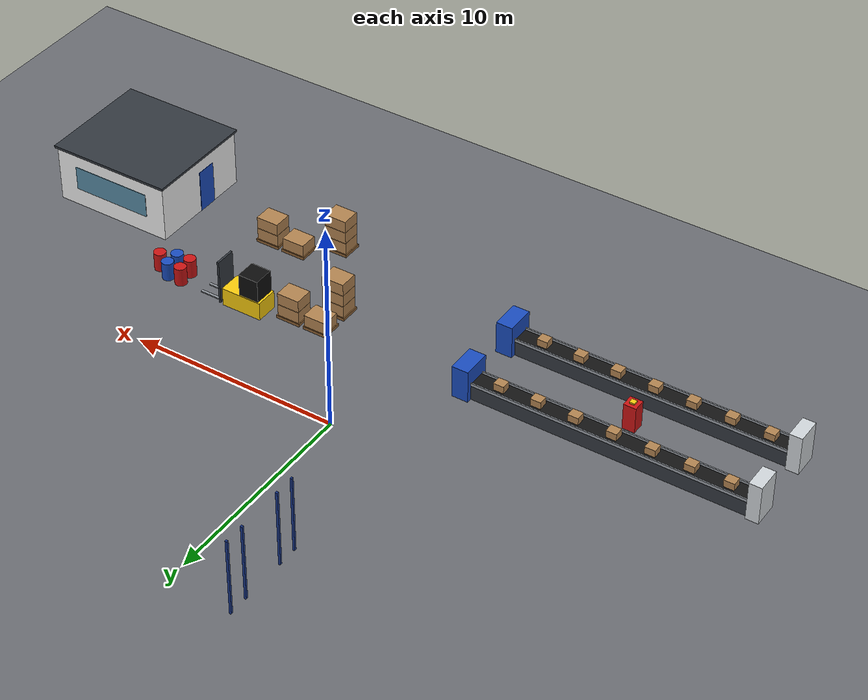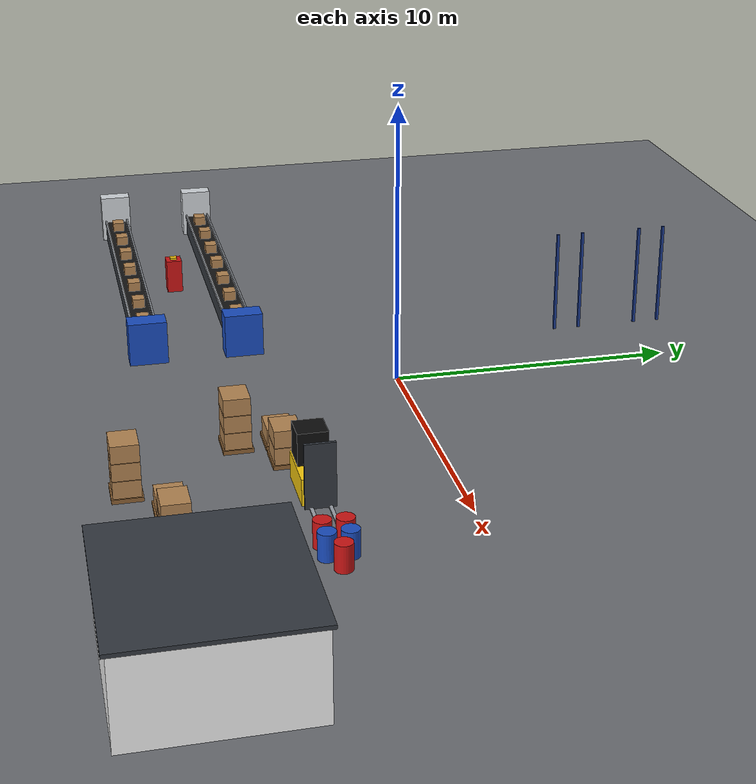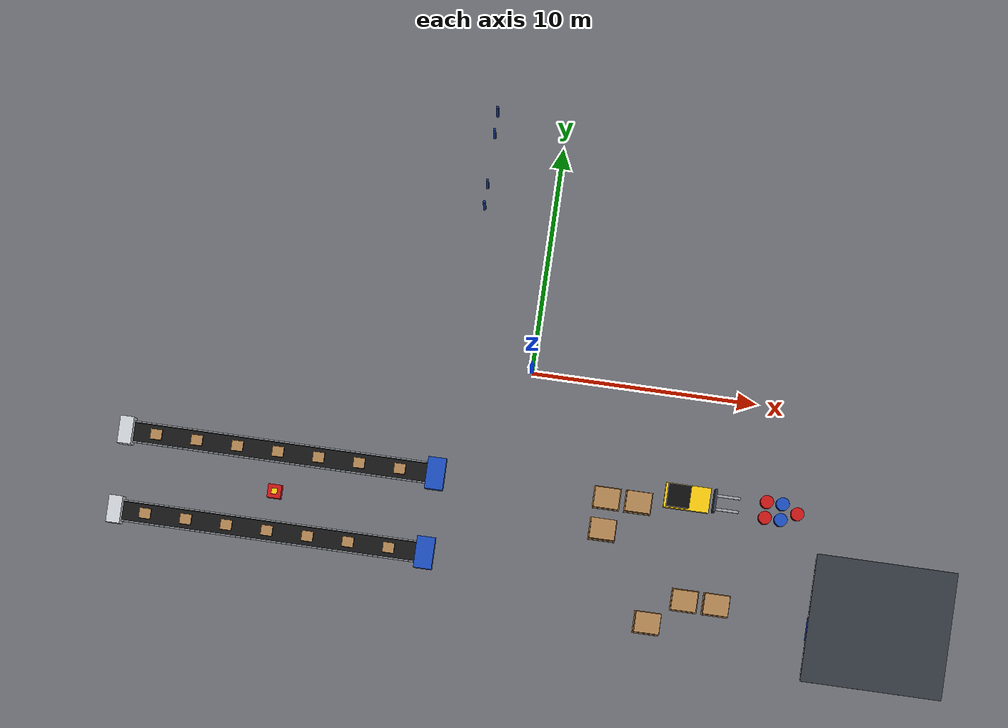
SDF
<sdf version="1.8">
 <world name="factory">
  <model name="ground">
   <static>true</static>
   <link name="l">
    <collision name="c">
     <geometry><plane><normal>0 0 1</normal><size>60 40</size></plane></geometry>
     <surface><friction><ode><mu>1.0</mu><mu2>1.0</mu2></ode></friction></surface>
    </collision>
    <visual name="v">
     <geometry><plane><normal>0 0 1</normal><size>60 40</size></plane></geometry>
     <material>
      <ambient>0.42 0.43 0.45 1</ambient>
      <diffuse>0.42 0.43 0.45 1</diffuse>
      <specular>0.3 0.3 0.3 1</specular>
      <pbr><metal><metalness>0.0</metalness><roughness>0.85</roughness></metal></pbr>
     </material>
    </visual>
   </link>
  </model>
  <model name="pallet_racks">
   <static>true</static>
   <link name="l124">
    <pose>-3.100 6.920 1.900 0 0 0.000</pose>
    <collision name="c"><geometry><box><size>0.1 0.1 3.8</size></box></geometry></collision>
    <visual name="v">
     <geometry><box><size>0.1 0.1 3.8</size></box></geometry>
     <material>
      <ambient>0.1 0.22 0.55 1</ambient>
      <diffuse>0.1 0.22 0.55 1</diffuse>
      <specular>0.3 0.3 0.3 1</specular>
      <pbr><metal><metalness>0.6</metalness><roughness>0.4</roughness></metal></pbr>
     </material>
    </visual>
   </link>
   <link name="l125">
    <pose>-3.100 7.880 1.900 0 0 0.000</pose>
    <collision name="c"><geometry><box><size>0.1 0.1 3.8</size></box></geometry></collision>
    <visual name="v">
     <geometry><box><size>0.1 0.1 3.8</size></box></geometry>
     <material>
      <ambient>0.1 0.22 0.55 1</ambient>
      <diffuse>0.1 0.22 0.55 1</diffuse>
      <specular>0.3 0.3 0.3 1</specular>
      <pbr><metal><metalness>0.6</metalness><roughness>0.4</roughness></metal></pbr>
     </material>
    </visual>
   </link>
   <link name="l187">
    <pose>-3.100 10.120 1.900 0 0 0.000</pose>
    <collision name="c"><geometry><box><size>0.1 0.1 3.8</size></box></geometry></collision>
    <visual name="v">
     <geometry><box><size>0.1 0.1 3.8</size></box></geometry>
     <material>
      <ambient>0.1 0.22 0.55 1</ambient>
      <diffuse>0.1 0.22 0.55 1</diffuse>
      <specular>0.3 0.3 0.3 1</specular>
      <pbr><metal><metalness>0.6</metalness><roughness>0.4</roughness></metal></pbr>
     </material>
    </visual>
   </link>
   <link name="l188">
    <pose>-3.100 11.080 1.900 0 0 0.000</pose>
    <collision name="c"><geometry><box><size>0.1 0.1 3.8</size></box></geometry></collision>
    <visual name="v">
     <geometry><box><size>0.1 0.1 3.8</size></box></geometry>
     <material>
      <ambient>0.1 0.22 0.55 1</ambient>
      <diffuse>0.1 0.22 0.55 1</diffuse>
      <specular>0.3 0.3 0.3 1</specular>
      <pbr><metal><metalness>0.6</metalness><roughness>0.4</roughness></metal></pbr>
     </material>
    </visual>
   </link>
  </model>
  <model name="conveyors">
   <static>true</static>
   <link name="l0">
    <pose>-10.500 -5.000 0.375 0 0 0.000</pose>
    <collision name="c"><geometry><box><size>13.0 0.9 0.75</size></box></geometry></collision>
    <visual name="v">
     <geometry><box><size>13.0 0.9 0.75</size></box></geometry>
     <material>
      <ambient>0.2 0.22 0.25 1</ambient>
      <diffuse>0.2 0.22 0.25 1</diffuse>
      <specular>0.3 0.3 0.3 1</specular>
      <pbr><metal><metalness>0.6</metalness><roughness>0.35</roughness></metal></pbr>
     </material>
    </visual>
   </link>
   <link name="l1">
    <pose>-10.500 -5.000 0.780 0 0 0.000</pose>
    <collision name="c"><geometry><box><size>13.0 0.8 0.06</size></box></geometry></collision>
    <visual name="v">
     <geometry><box><size>13.0 0.8 0.06</size></box></geometry>
     <material>
      <ambient>0.08 0.08 0.08 1</ambient>
      <diffuse>0.08 0.08 0.08 1</diffuse>
      <specular>0.3 0.3 0.3 1</specular>
      <pbr><metal><metalness>0.0</metalness><roughness>0.8</roughness></metal></pbr>
     </material>
    </visual>
   </link>
   <link name="l2">
    <pose>-10.500 -5.450 0.825 0 0 0.000</pose>
    <collision name="c"><geometry><box><size>13.0 0.06 0.15</size></box></geometry></collision>
    <visual name="v">
     <geometry><box><size>13.0 0.06 0.15</size></box></geometry>
     <material>
      <ambient>0.6 0.62 0.65 1</ambient>
      <diffuse>0.6 0.62 0.65 1</diffuse>
      <specular>0.3 0.3 0.3 1</specular>
      <pbr><metal><metalness>0.9</metalness><roughness>0.3</roughness></metal></pbr>
     </material>
    </visual>
   </link>
   <link name="l3">
    <pose>-10.500 -4.550 0.825 0 0 0.000</pose>
    <collision name="c"><geometry><box><size>13.0 0.06 0.15</size></box></geometry></collision>
    <visual name="v">
     <geometry><box><size>13.0 0.06 0.15</size></box></geometry>
     <material>
      <ambient>0.6 0.62 0.65 1</ambient>
      <diffuse>0.6 0.62 0.65 1</diffuse>
      <specular>0.3 0.3 0.3 1</specular>
      <pbr><metal><metalness>0.9</metalness><roughness>0.3</roughness></metal></pbr>
     </material>
    </visual>
   </link>
   <link name="l4">
    <pose>-16.000 -5.000 0.985 0 0 0.000</pose>
    <collision name="c"><geometry><box><size>0.5 0.45 0.35</size></box></geometry></collision>
    <visual name="v">
     <geometry><box><size>0.5 0.45 0.35</size></box></geometry>
     <material>
      <ambient>0.7 0.52 0.32 1</ambient>
      <diffuse>0.7 0.52 0.32 1</diffuse>
      <specular>0.3 0.3 0.3 1</specular>
      <pbr><metal><metalness>0.0</metalness><roughness>0.95</roughness></metal></pbr>
     </material>
    </visual>
   </link>
   <link name="l5">
    <pose>-14.200 -5.000 0.985 0 0 0.000</pose>
    <collision name="c"><geometry><box><size>0.5 0.45 0.35</size></box></geometry></collision>
    <visual name="v">
     <geometry><box><size>0.5 0.45 0.35</size></box></geometry>
     <material>
      <ambient>0.7 0.52 0.32 1</ambient>
      <diffuse>0.7 0.52 0.32 1</diffuse>
      <specular>0.3 0.3 0.3 1</specular>
      <pbr><metal><metalness>0.0</metalness><roughness>0.95</roughness></metal></pbr>
     </material>
    </visual>
   </link>
   <link name="l6">
    <pose>-12.400 -5.000 0.985 0 0 0.000</pose>
    <collision name="c"><geometry><box><size>0.5 0.45 0.35</size></box></geometry></collision>
    <visual name="v">
     <geometry><box><size>0.5 0.45 0.35</size></box></geometry>
     <material>
      <ambient>0.7 0.52 0.32 1</ambient>
      <diffuse>0.7 0.52 0.32 1</diffuse>
      <specular>0.3 0.3 0.3 1</specular>
      <pbr><metal><metalness>0.0</metalness><roughness>0.95</roughness></metal></pbr>
     </material>
    </visual>
   </link>
   <link name="l7">
    <pose>-10.600 -5.000 0.985 0 0 0.000</pose>
    <collision name="c"><geometry><box><size>0.5 0.45 0.35</size></box></geometry></collision>
    <visual name="v">
     <geometry><box><size>0.5 0.45 0.35</size></box></geometry>
     <material>
      <ambient>0.7 0.52 0.32 1</ambient>
      <diffuse>0.7 0.52 0.32 1</diffuse>
      <specular>0.3 0.3 0.3 1</specular>
      <pbr><metal><metalness>0.0</metalness><roughness>0.95</roughness></metal></pbr>
     </material>
    </visual>
   </link>
   <link name="l8">
    <pose>-8.800 -5.000 0.985 0 0 0.000</pose>
    <collision name="c"><geometry><box><size>0.5 0.45 0.35</size></box></geometry></collision>
    <visual name="v">
     <geometry><box><size>0.5 0.45 0.35</size></box></geometry>
     <material>
      <ambient>0.7 0.52 0.32 1</ambient>
      <diffuse>0.7 0.52 0.32 1</diffuse>
      <specular>0.3 0.3 0.3 1</specular>
      <pbr><metal><metalness>0.0</metalness><roughness>0.95</roughness></metal></pbr>
     </material>
    </visual>
   </link>
   <link name="l9">
    <pose>-7.000 -5.000 0.985 0 0 0.000</pose>
    <collision name="c"><geometry><box><size>0.5 0.45 0.35</size></box></geometry></collision>
    <visual name="v">
     <geometry><box><size>0.5 0.45 0.35</size></box></geometry>
     <material>
      <ambient>0.7 0.52 0.32 1</ambient>
      <diffuse>0.7 0.52 0.32 1</diffuse>
      <specular>0.3 0.3 0.3 1</specular>
      <pbr><metal><metalness>0.0</metalness><roughness>0.95</roughness></metal></pbr>
     </material>
    </visual>
   </link>
   <link name="l10">
    <pose>-5.200 -5.000 0.985 0 0 0.000</pose>
    <collision name="c"><geometry><box><size>0.5 0.45 0.35</size></box></geometry></collision>
    <visual name="v">
     <geometry><box><size>0.5 0.45 0.35</size></box></geometry>
     <material>
      <ambient>0.7 0.52 0.32 1</ambient>
      <diffuse>0.7 0.52 0.32 1</diffuse>
      <specular>0.3 0.3 0.3 1</specular>
      <pbr><metal><metalness>0.0</metalness><roughness>0.95</roughness></metal></pbr>
     </material>
    </visual>
   </link>
   <link name="l11">
    <pose>-3.600 -5.000 0.800 0 0 0.000</pose>
    <collision name="c"><geometry><box><size>0.8 1.4 1.6</size></box></geometry></collision>
    <visual name="v">
     <geometry><box><size>0.8 1.4 1.6</size></box></geometry>
     <material>
      <ambient>0.1 0.3 0.75 1</ambient>
      <diffuse>0.1 0.3 0.75 1</diffuse>
      <specular>0.3 0.3 0.3 1</specular>
      <pbr><metal><metalness>0.4</metalness><roughness>0.4</roughness></metal></pbr>
     </material>
    </visual>
   </link>
   <link name="l12">
    <pose>-17.300 -5.000 0.950 0 0 0.000</pose>
    <collision name="c"><geometry><box><size>0.6 1.2 1.9</size></box></geometry></collision>
    <visual name="v">
     <geometry><box><size>0.6 1.2 1.9</size></box></geometry>
     <material>
      <ambient>0.82 0.84 0.86 1</ambient>
      <diffuse>0.82 0.84 0.86 1</diffuse>
      <specular>0.3 0.3 0.3 1</specular>
      <pbr><metal><metalness>0.5</metalness><roughness>0.35</roughness></metal></pbr>
     </material>
    </visual>
   </link>
   <link name="l13">
    <pose>-10.500 -8.500 0.375 0 0 0.000</pose>
    <collision name="c"><geometry><box><size>13.0 0.9 0.75</size></box></geometry></collision>
    <visual name="v">
     <geometry><box><size>13.0 0.9 0.75</size></box></geometry>
     <material>
      <ambient>0.2 0.22 0.25 1</ambient>
      <diffuse>0.2 0.22 0.25 1</diffuse>
      <specular>0.3 0.3 0.3 1</specular>
      <pbr><metal><metalness>0.6</metalness><roughness>0.35</roughness></metal></pbr>
     </material>
    </visual>
   </link>
   <link name="l14">
    <pose>-10.500 -8.500 0.780 0 0 0.000</pose>
    <collision name="c"><geometry><box><size>13.0 0.8 0.06</size></box></geometry></collision>
    <visual name="v">
     <geometry><box><size>13.0 0.8 0.06</size></box></geometry>
     <material>
      <ambient>0.08 0.08 0.08 1</ambient>
      <diffuse>0.08 0.08 0.08 1</diffuse>
      <specular>0.3 0.3 0.3 1</specular>
      <pbr><metal><metalness>0.0</metalness><roughness>0.8</roughness></metal></pbr>
     </material>
    </visual>
   </link>
   <link name="l15">
    <pose>-10.500 -8.950 0.825 0 0 0.000</pose>
    <collision name="c"><geometry><box><size>13.0 0.06 0.15</size></box></geometry></collision>
    <visual name="v">
     <geometry><box><size>13.0 0.06 0.15</size></box></geometry>
     <material>
      <ambient>0.6 0.62 0.65 1</ambient>
      <diffuse>0.6 0.62 0.65 1</diffuse>
      <specular>0.3 0.3 0.3 1</specular>
      <pbr><metal><metalness>0.9</metalness><roughness>0.3</roughness></metal></pbr>
     </material>
    </visual>
   </link>
   <link name="l16">
    <pose>-10.500 -8.050 0.825 0 0 0.000</pose>
    <collision name="c"><geometry><box><size>13.0 0.06 0.15</size></box></geometry></collision>
    <visual name="v">
     <geometry><box><size>13.0 0.06 0.15</size></box></geometry>
     <material>
      <ambient>0.6 0.62 0.65 1</ambient>
      <diffuse>0.6 0.62 0.65 1</diffuse>
      <specular>0.3 0.3 0.3 1</specular>
      <pbr><metal><metalness>0.9</metalness><roughness>0.3</roughness></metal></pbr>
     </material>
    </visual>
   </link>
   <link name="l17">
    <pose>-16.000 -8.500 0.985 0 0 0.000</pose>
    <collision name="c"><geometry><box><size>0.5 0.45 0.35</size></box></geometry></collision>
    <visual name="v">
     <geometry><box><size>0.5 0.45 0.35</size></box></geometry>
     <material>
      <ambient>0.7 0.52 0.32 1</ambient>
      <diffuse>0.7 0.52 0.32 1</diffuse>
      <specular>0.3 0.3 0.3 1</specular>
      <pbr><metal><metalness>0.0</metalness><roughness>0.95</roughness></metal></pbr>
     </material>
    </visual>
   </link>
   <link name="l18">
    <pose>-14.200 -8.500 0.985 0 0 0.000</pose>
    <collision name="c"><geometry><box><size>0.5 0.45 0.35</size></box></geometry></collision>
    <visual name="v">
     <geometry><box><size>0.5 0.45 0.35</size></box></geometry>
     <material>
      <ambient>0.7 0.52 0.32 1</ambient>
      <diffuse>0.7 0.52 0.32 1</diffuse>
      <specular>0.3 0.3 0.3 1</specular>
      <pbr><metal><metalness>0.0</metalness><roughness>0.95</roughness></metal></pbr>
     </material>
    </visual>
   </link>
   <link name="l19">
    <pose>-12.400 -8.500 0.985 0 0 0.000</pose>
    <collision name="c"><geometry><box><size>0.5 0.45 0.35</size></box></geometry></collision>
    <visual name="v">
     <geometry><box><size>0.5 0.45 0.35</size></box></geometry>
     <material>
      <ambient>0.7 0.52 0.32 1</ambient>
      <diffuse>0.7 0.52 0.32 1</diffuse>
      <specular>0.3 0.3 0.3 1</specular>
      <pbr><metal><metalness>0.0</metalness><roughness>0.95</roughness></metal></pbr>
     </material>
    </visual>
   </link>
   <link name="l20">
    <pose>-10.600 -8.500 0.985 0 0 0.000</pose>
    <collision name="c"><geometry><box><size>0.5 0.45 0.35</size></box></geometry></collision>
    <visual name="v">
     <geometry><box><size>0.5 0.45 0.35</size></box></geometry>
     <material>
      <ambient>0.7 0.52 0.32 1</ambient>
      <diffuse>0.7 0.52 0.32 1</diffuse>
      <specular>0.3 0.3 0.3 1</specular>
      <pbr><metal><metalness>0.0</metalness><roughness>0.95</roughness></metal></pbr>
     </material>
    </visual>
   </link>
   <link name="l21">
    <pose>-8.800 -8.500 0.985 0 0 0.000</pose>
    <collision name="c"><geometry><box><size>0.5 0.45 0.35</size></box></geometry></collision>
    <visual name="v">
     <geometry><box><size>0.5 0.45 0.35</size></box></geometry>
     <material>
      <ambient>0.7 0.52 0.32 1</ambient>
      <diffuse>0.7 0.52 0.32 1</diffuse>
      <specular>0.3 0.3 0.3 1</specular>
      <pbr><metal><metalness>0.0</metalness><roughness>0.95</roughness></metal></pbr>
     </material>
    </visual>
   </link>
   <link name="l22">
    <pose>-7.000 -8.500 0.985 0 0 0.000</pose>
    <collision name="c"><geometry><box><size>0.5 0.45 0.35</size></box></geometry></collision>
    <visual name="v">
     <geometry><box><size>0.5 0.45 0.35</size></box></geometry>
     <material>
      <ambient>0.7 0.52 0.32 1</ambient>
      <diffuse>0.7 0.52 0.32 1</diffuse>
      <specular>0.3 0.3 0.3 1</specular>
      <pbr><metal><metalness>0.0</metalness><roughness>0.95</roughness></metal></pbr>
     </material>
    </visual>
   </link>
   <link name="l23">
    <pose>-5.200 -8.500 0.985 0 0 0.000</pose>
    <collision name="c"><geometry><box><size>0.5 0.45 0.35</size></box></geometry></collision>
    <visual name="v">
     <geometry><box><size>0.5 0.45 0.35</size></box></geometry>
     <material>
      <ambient>0.7 0.52 0.32 1</ambient>
      <diffuse>0.7 0.52 0.32 1</diffuse>
      <specular>0.3 0.3 0.3 1</specular>
      <pbr><metal><metalness>0.0</metalness><roughness>0.95</roughness></metal></pbr>
     </material>
    </visual>
   </link>
   <link name="l24">
    <pose>-3.600 -8.500 0.800 0 0 0.000</pose>
    <collision name="c"><geometry><box><size>0.8 1.4 1.6</size></box></geometry></collision>
    <visual name="v">
     <geometry><box><size>0.8 1.4 1.6</size></box></geometry>
     <material>
      <ambient>0.1 0.3 0.75 1</ambient>
      <diffuse>0.1 0.3 0.75 1</diffuse>
      <specular>0.3 0.3 0.3 1</specular>
      <pbr><metal><metalness>0.4</metalness><roughness>0.4</roughness></metal></pbr>
     </material>
    </visual>
   </link>
   <link name="l25">
    <pose>-17.300 -8.500 0.950 0 0 0.000</pose>
    <collision name="c"><geometry><box><size>0.6 1.2 1.9</size></box></geometry></collision>
    <visual name="v">
     <geometry><box><size>0.6 1.2 1.9</size></box></geometry>
     <material>
      <ambient>0.82 0.84 0.86 1</ambient>
      <diffuse>0.82 0.84 0.86 1</diffuse>
      <specular>0.3 0.3 0.3 1</specular>
      <pbr><metal><metalness>0.5</metalness><roughness>0.35</roughness></metal></pbr>
     </material>
    </visual>
   </link>
   <link name="l26">
    <pose>-10.500 -6.750 0.650 0 0 0.000</pose>
    <collision name="c"><geometry><box><size>0.6 0.6 1.3</size></box></geometry></collision>
    <visual name="v">
     <geometry><box><size>0.6 0.6 1.3</size></box></geometry>
     <material>
      <ambient>0.8 0.08 0.08 1</ambient>
      <diffuse>0.8 0.08 0.08 1</diffuse>
      <specular>0.3 0.3 0.3 1</specular>
      <pbr><metal><metalness>0.2</metalness><roughness>0.45</roughness></metal></pbr>
     </material>
    </visual>
   </link>
   <link name="l27">
    <pose>-10.500 -6.750 1.340 0 0 0.000</pose>
    <visual name="v">
     <geometry><box><size>0.25 0.25 0.08</size></box></geometry>
     <material>
      <ambient>0.98 0.8 0.05 1</ambient>
      <diffuse>0.98 0.8 0.05 1</diffuse>
      <specular>0.3 0.3 0.3 1</specular>
      <pbr><metal><metalness>0.0</metalness><roughness>0.5</roughness></metal></pbr>
     </material>
     <cast_shadows>false</cast_shadows>
    </visual>
   </link>
  </model>
  <model name="shipping">
   <static>true</static>
   <link name="l0">
    <pose>4.000 -5.000 0.075 0 0 0.000</pose>
    <collision name="c"><geometry><box><size>1.2 1.0 0.15</size></box></geometry></collision>
    <visual name="v">
     <geometry><box><size>1.2 1.0 0.15</size></box></geometry>
     <material>
      <ambient>0.55 0.38 0.2 1</ambient>
      <diffuse>0.55 0.38 0.2 1</diffuse>
      <specular>0.3 0.3 0.3 1</specular>
      <pbr><metal><metalness>0.0</metalness><roughness>0.9</roughness></metal></pbr>
     </material>
    </visual>
   </link>
   <link name="l1">
    <pose>4.000 -5.000 0.440 0 0 0.000</pose>
    <collision name="c"><geometry><box><size>1.1 0.9 0.58</size></box></geometry></collision>
    <visual name="v">
     <geometry><box><size>1.1 0.9 0.58</size></box></geometry>
     <material>
      <ambient>0.7 0.52 0.32 1</ambient>
      <diffuse>0.7 0.52 0.32 1</diffuse>
      <specular>0.3 0.3 0.3 1</specular>
      <pbr><metal><metalness>0.0</metalness><roughness>0.95</roughness></metal></pbr>
     </material>
    </visual>
   </link>
   <link name="l2">
    <pose>5.400 -5.000 0.075 0 0 0.000</pose>
    <collision name="c"><geometry><box><size>1.2 1.0 0.15</size></box></geometry></collision>
    <visual name="v">
     <geometry><box><size>1.2 1.0 0.15</size></box></geometry>
     <material>
      <ambient>0.55 0.38 0.2 1</ambient>
      <diffuse>0.55 0.38 0.2 1</diffuse>
      <specular>0.3 0.3 0.3 1</specular>
      <pbr><metal><metalness>0.0</metalness><roughness>0.9</roughness></metal></pbr>
     </material>
    </visual>
   </link>
   <link name="l3">
    <pose>5.400 -5.000 0.440 0 0 0.000</pose>
    <collision name="c"><geometry><box><size>1.1 0.9 0.58</size></box></geometry></collision>
    <visual name="v">
     <geometry><box><size>1.1 0.9 0.58</size></box></geometry>
     <material>
      <ambient>0.7 0.52 0.32 1</ambient>
      <diffuse>0.7 0.52 0.32 1</diffuse>
      <specular>0.3 0.3 0.3 1</specular>
      <pbr><metal><metalness>0.0</metalness><roughness>0.95</roughness></metal></pbr>
     </material>
    </visual>
   </link>
   <link name="l4">
    <pose>5.400 -5.000 1.040 0 0 0.000</pose>
    <collision name="c"><geometry><box><size>1.1 0.9 0.58</size></box></geometry></collision>
    <visual name="v">
     <geometry><box><size>1.1 0.9 0.58</size></box></geometry>
     <material>
      <ambient>0.7 0.52 0.32 1</ambient>
      <diffuse>0.7 0.52 0.32 1</diffuse>
      <specular>0.3 0.3 0.3 1</specular>
      <pbr><metal><metalness>0.0</metalness><roughness>0.95</roughness></metal></pbr>
     </material>
    </visual>
   </link>
   <link name="l5">
    <pose>4.000 -6.400 0.075 0 0 0.000</pose>
    <collision name="c"><geometry><box><size>1.2 1.0 0.15</size></box></geometry></collision>
    <visual name="v">
     <geometry><box><size>1.2 1.0 0.15</size></box></geometry>
     <material>
      <ambient>0.55 0.38 0.2 1</ambient>
      <diffuse>0.55 0.38 0.2 1</diffuse>
      <specular>0.3 0.3 0.3 1</specular>
      <pbr><metal><metalness>0.0</metalness><roughness>0.9</roughness></metal></pbr>
     </material>
    </visual>
   </link>
   <link name="l6">
    <pose>4.000 -6.400 0.440 0 0 0.000</pose>
    <collision name="c"><geometry><box><size>1.1 0.9 0.58</size></box></geometry></collision>
    <visual name="v">
     <geometry><box><size>1.1 0.9 0.58</size></box></geometry>
     <material>
      <ambient>0.7 0.52 0.32 1</ambient>
      <diffuse>0.7 0.52 0.32 1</diffuse>
      <specular>0.3 0.3 0.3 1</specular>
      <pbr><metal><metalness>0.0</metalness><roughness>0.95</roughness></metal></pbr>
     </material>
    </visual>
   </link>
   <link name="l7">
    <pose>4.000 -6.400 1.040 0 0 0.000</pose>
    <collision name="c"><geometry><box><size>1.1 0.9 0.58</size></box></geometry></collision>
    <visual name="v">
     <geometry><box><size>1.1 0.9 0.58</size></box></geometry>
     <material>
      <ambient>0.7 0.52 0.32 1</ambient>
      <diffuse>0.7 0.52 0.32 1</diffuse>
      <specular>0.3 0.3 0.3 1</specular>
      <pbr><metal><metalness>0.0</metalness><roughness>0.95</roughness></metal></pbr>
     </material>
    </visual>
   </link>
   <link name="l8">
    <pose>4.000 -6.400 1.640 0 0 0.000</pose>
    <collision name="c"><geometry><box><size>1.1 0.9 0.58</size></box></geometry></collision>
    <visual name="v">
     <geometry><box><size>1.1 0.9 0.58</size></box></geometry>
     <material>
      <ambient>0.7 0.52 0.32 1</ambient>
      <diffuse>0.7 0.52 0.32 1</diffuse>
      <specular>0.3 0.3 0.3 1</specular>
      <pbr><metal><metalness>0.0</metalness><roughness>0.95</roughness></metal></pbr>
     </material>
    </visual>
   </link>
   <link name="l9">
    <pose>8.000 -9.000 0.075 0 0 0.000</pose>
    <collision name="c"><geometry><box><size>1.2 1.0 0.15</size></box></geometry></collision>
    <visual name="v">
     <geometry><box><size>1.2 1.0 0.15</size></box></geometry>
     <material>
      <ambient>0.55 0.38 0.2 1</ambient>
      <diffuse>0.55 0.38 0.2 1</diffuse>
      <specular>0.3 0.3 0.3 1</specular>
      <pbr><metal><metalness>0.0</metalness><roughness>0.9</roughness></metal></pbr>
     </material>
    </visual>
   </link>
   <link name="l10">
    <pose>8.000 -9.000 0.440 0 0 0.000</pose>
    <collision name="c"><geometry><box><size>1.1 0.9 0.58</size></box></geometry></collision>
    <visual name="v">
     <geometry><box><size>1.1 0.9 0.58</size></box></geometry>
     <material>
      <ambient>0.7 0.52 0.32 1</ambient>
      <diffuse>0.7 0.52 0.32 1</diffuse>
      <specular>0.3 0.3 0.3 1</specular>
      <pbr><metal><metalness>0.0</metalness><roughness>0.95</roughness></metal></pbr>
     </material>
    </visual>
   </link>
   <link name="l11">
    <pose>9.400 -9.000 0.075 0 0 0.000</pose>
    <collision name="c"><geometry><box><size>1.2 1.0 0.15</size></box></geometry></collision>
    <visual name="v">
     <geometry><box><size>1.2 1.0 0.15</size></box></geometry>
     <material>
      <ambient>0.55 0.38 0.2 1</ambient>
      <diffuse>0.55 0.38 0.2 1</diffuse>
      <specular>0.3 0.3 0.3 1</specular>
      <pbr><metal><metalness>0.0</metalness><roughness>0.9</roughness></metal></pbr>
     </material>
    </visual>
   </link>
   <link name="l12">
    <pose>9.400 -9.000 0.440 0 0 0.000</pose>
    <collision name="c"><geometry><box><size>1.1 0.9 0.58</size></box></geometry></collision>
    <visual name="v">
     <geometry><box><size>1.1 0.9 0.58</size></box></geometry>
     <material>
      <ambient>0.7 0.52 0.32 1</ambient>
      <diffuse>0.7 0.52 0.32 1</diffuse>
      <specular>0.3 0.3 0.3 1</specular>
      <pbr><metal><metalness>0.0</metalness><roughness>0.95</roughness></metal></pbr>
     </material>
    </visual>
   </link>
   <link name="l13">
    <pose>9.400 -9.000 1.040 0 0 0.000</pose>
    <collision name="c"><geometry><box><size>1.1 0.9 0.58</size></box></geometry></collision>
    <visual name="v">
     <geometry><box><size>1.1 0.9 0.58</size></box></geometry>
     <material>
      <ambient>0.7 0.52 0.32 1</ambient>
      <diffuse>0.7 0.52 0.32 1</diffuse>
      <specular>0.3 0.3 0.3 1</specular>
      <pbr><metal><metalness>0.0</metalness><roughness>0.95</roughness></metal></pbr>
     </material>
    </visual>
   </link>
   <link name="l14">
    <pose>6.500 -10.200 0.075 0 0 0.000</pose>
    <collision name="c"><geometry><box><size>1.2 1.0 0.15</size></box></geometry></collision>
    <visual name="v">
     <geometry><box><size>1.2 1.0 0.15</size></box></geometry>
     <material>
      <ambient>0.55 0.38 0.2 1</ambient>
      <diffuse>0.55 0.38 0.2 1</diffuse>
      <specular>0.3 0.3 0.3 1</specular>
      <pbr><metal><metalness>0.0</metalness><roughness>0.9</roughness></metal></pbr>
     </material>
    </visual>
   </link>
   <link name="l15">
    <pose>6.500 -10.200 0.440 0 0 0.000</pose>
    <collision name="c"><geometry><box><size>1.1 0.9 0.58</size></box></geometry></collision>
    <visual name="v">
     <geometry><box><size>1.1 0.9 0.58</size></box></geometry>
     <material>
      <ambient>0.7 0.52 0.32 1</ambient>
      <diffuse>0.7 0.52 0.32 1</diffuse>
      <specular>0.3 0.3 0.3 1</specular>
      <pbr><metal><metalness>0.0</metalness><roughness>0.95</roughness></metal></pbr>
     </material>
    </visual>
   </link>
   <link name="l16">
    <pose>6.500 -10.200 1.040 0 0 0.000</pose>
    <collision name="c"><geometry><box><size>1.1 0.9 0.58</size></box></geometry></collision>
    <visual name="v">
     <geometry><box><size>1.1 0.9 0.58</size></box></geometry>
     <material>
      <ambient>0.7 0.52 0.32 1</ambient>
      <diffuse>0.7 0.52 0.32 1</diffuse>
      <specular>0.3 0.3 0.3 1</specular>
      <pbr><metal><metalness>0.0</metalness><roughness>0.95</roughness></metal></pbr>
     </material>
    </visual>
   </link>
   <link name="l17">
    <pose>6.500 -10.200 1.640 0 0 0.000</pose>
    <collision name="c"><geometry><box><size>1.1 0.9 0.58</size></box></geometry></collision>
    <visual name="v">
     <geometry><box><size>1.1 0.9 0.58</size></box></geometry>
     <material>
      <ambient>0.7 0.52 0.32 1</ambient>
      <diffuse>0.7 0.52 0.32 1</diffuse>
      <specular>0.3 0.3 0.3 1</specular>
      <pbr><metal><metalness>0.0</metalness><roughness>0.95</roughness></metal></pbr>
     </material>
    </visual>
   </link>
   <link name="l18">
    <pose>11.000 -4.200 0.450 0 0 0.000</pose>
    <collision name="c">
     <geometry><cylinder><radius>0.29</radius><length>0.9</length></cylinder></geometry>
    </collision>
    <visual name="v">
     <geometry><cylinder><radius>0.29</radius><length>0.9</length></cylinder></geometry>
     <material>
      <ambient>0.8 0.08 0.08 1</ambient>
      <diffuse>0.8 0.08 0.08 1</diffuse>
      <specular>0.3 0.3 0.3 1</specular>
      <pbr><metal><metalness>0.2</metalness><roughness>0.45</roughness></metal></pbr>
     </material>
    </visual>
   </link>
   <link name="l19">
    <pose>11.700 -4.200 0.450 0 0 0.000</pose>
    <collision name="c">
     <geometry><cylinder><radius>0.29</radius><length>0.9</length></cylinder></geometry>
    </collision>
    <visual name="v">
     <geometry><cylinder><radius>0.29</radius><length>0.9</length></cylinder></geometry>
     <material>
      <ambient>0.1 0.3 0.75 1</ambient>
      <diffuse>0.1 0.3 0.75 1</diffuse>
      <specular>0.3 0.3 0.3 1</specular>
      <pbr><metal><metalness>0.4</metalness><roughness>0.4</roughness></metal></pbr>
     </material>
    </visual>
   </link>
   <link name="l20">
    <pose>11.000 -4.900 0.450 0 0 0.000</pose>
    <collision name="c">
     <geometry><cylinder><radius>0.29</radius><length>0.9</length></cylinder></geometry>
    </collision>
    <visual name="v">
     <geometry><cylinder><radius>0.29</radius><length>0.9</length></cylinder></geometry>
     <material>
      <ambient>0.8 0.08 0.08 1</ambient>
      <diffuse>0.8 0.08 0.08 1</diffuse>
      <specular>0.3 0.3 0.3 1</specular>
      <pbr><metal><metalness>0.2</metalness><roughness>0.45</roughness></metal></pbr>
     </material>
    </visual>
   </link>
   <link name="l21">
    <pose>11.700 -4.900 0.450 0 0 0.000</pose>
    <collision name="c">
     <geometry><cylinder><radius>0.29</radius><length>0.9</length></cylinder></geometry>
    </collision>
    <visual name="v">
     <geometry><cylinder><radius>0.29</radius><length>0.9</length></cylinder></geometry>
     <material>
      <ambient>0.1 0.3 0.75 1</ambient>
      <diffuse>0.1 0.3 0.75 1</diffuse>
      <specular>0.3 0.3 0.3 1</specular>
      <pbr><metal><metalness>0.4</metalness><roughness>0.4</roughness></metal></pbr>
     </material>
    </visual>
   </link>
   <link name="l22">
    <pose>12.400 -4.550 0.450 0 0 0.000</pose>
    <collision name="c">
     <geometry><cylinder><radius>0.29</radius><length>0.9</length></cylinder></geometry>
    </collision>
    <visual name="v">
     <geometry><cylinder><radius>0.29</radius><length>0.9</length></cylinder></geometry>
     <material>
      <ambient>0.8 0.08 0.08 1</ambient>
      <diffuse>0.8 0.08 0.08 1</diffuse>
      <specular>0.3 0.3 0.3 1</specular>
      <pbr><metal><metalness>0.2</metalness><roughness>0.45</roughness></metal></pbr>
     </material>
    </visual>
   </link>
   <link name="l23">
    <pose>7.500 -4.500 0.450 0 0 0.000</pose>
    <collision name="c"><geometry><box><size>2.0 1.1 0.9</size></box></geometry></collision>
    <visual name="v">
     <geometry><box><size>2.0 1.1 0.9</size></box></geometry>
     <material>
      <ambient>0.98 0.8 0.05 1</ambient>
      <diffuse>0.98 0.8 0.05 1</diffuse>
      <specular>0.3 0.3 0.3 1</specular>
      <pbr><metal><metalness>0.0</metalness><roughness>0.5</roughness></metal></pbr>
     </material>
    </visual>
   </link>
   <link name="l24">
    <pose>7.100 -4.500 1.450 0 0 0.000</pose>
    <collision name="c"><geometry><box><size>1.0 1.0 1.1</size></box></geometry></collision>
    <visual name="v">
     <geometry><box><size>1.0 1.0 1.1</size></box></geometry>
     <material>
      <ambient>0.05 0.05 0.05 1</ambient>
      <diffuse>0.05 0.05 0.05 1</diffuse>
      <specular>0.3 0.3 0.3 1</specular>
      <pbr><metal><metalness>0.0</metalness><roughness>0.6</roughness></metal></pbr>
     </material>
    </visual>
   </link>
   <link name="l25">
    <pose>8.700 -4.500 1.100 0 0 0.000</pose>
    <collision name="c"><geometry><box><size>0.1 1.0 2.2</size></box></geometry></collision>
    <visual name="v">
     <geometry><box><size>0.1 1.0 2.2</size></box></geometry>
     <material>
      <ambient>0.2 0.22 0.25 1</ambient>
      <diffuse>0.2 0.22 0.25 1</diffuse>
      <specular>0.3 0.3 0.3 1</specular>
      <pbr><metal><metalness>0.6</metalness><roughness>0.35</roughness></metal></pbr>
     </material>
    </visual>
   </link>
   <link name="l26">
    <pose>9.300 -4.800 0.030 0 0 0.000</pose>
    <collision name="c"><geometry><box><size>1.1 0.12 0.06</size></box></geometry></collision>
    <visual name="v">
     <geometry><box><size>1.1 0.12 0.06</size></box></geometry>
     <material>
      <ambient>0.6 0.62 0.65 1</ambient>
      <diffuse>0.6 0.62 0.65 1</diffuse>
      <specular>0.3 0.3 0.3 1</specular>
      <pbr><metal><metalness>0.9</metalness><roughness>0.3</roughness></metal></pbr>
     </material>
    </visual>
   </link>
   <link name="l27">
    <pose>9.300 -4.200 0.030 0 0 0.000</pose>
    <collision name="c"><geometry><box><size>1.1 0.12 0.06</size></box></geometry></collision>
    <visual name="v">
     <geometry><box><size>1.1 0.12 0.06</size></box></geometry>
     <material>
      <ambient>0.6 0.62 0.65 1</ambient>
      <diffuse>0.6 0.62 0.65 1</diffuse>
      <specular>0.3 0.3 0.3 1</specular>
      <pbr><metal><metalness>0.9</metalness><roughness>0.3</roughness></metal></pbr>
     </material>
    </visual>
   </link>
   <link name="l28">
    <pose>16.500 -9.000 1.400 0 0 0.000</pose>
    <collision name="c"><geometry><box><size>6.0 5.4 2.8</size></box></geometry></collision>
    <visual name="v">
     <geometry><box><size>6.0 5.4 2.8</size></box></geometry>
     <material>
      <ambient>0.95 0.95 0.95 1</ambient>
      <diffuse>0.95 0.95 0.95 1</diffuse>
      <specular>0.3 0.3 0.3 1</specular>
      <pbr><metal><metalness>0.0</metalness><roughness>0.6</roughness></metal></pbr>
     </material>
    </visual>
   </link>
   <link name="l29">
    <pose>16.500 -6.290 1.500 0 0 0.000</pose>
    <visual name="v">
     <geometry><box><size>4.0 0.02 1.2</size></box></geometry>
     <material>
      <ambient>0.35 0.55 0.65 1</ambient>
      <diffuse>0.35 0.55 0.65 1</diffuse>
      <specular>0.3 0.3 0.3 1</specular>
      <pbr><metal><metalness>0.1</metalness><roughness>0.1</roughness></metal></pbr>
     </material>
     <cast_shadows>false</cast_shadows>
    </visual>
   </link>
   <link name="l30">
    <pose>13.490 -9.500 1.050 0 0 0.000</pose>
    <visual name="v">
     <geometry><box><size>0.02 1.0 2.1</size></box></geometry>
     <material>
      <ambient>0.1 0.3 0.75 1</ambient>
      <diffuse>0.1 0.3 0.75 1</diffuse>
      <specular>0.3 0.3 0.3 1</specular>
      <pbr><metal><metalness>0.4</metalness><roughness>0.4</roughness></metal></pbr>
     </material>
     <cast_shadows>false</cast_shadows>
    </visual>
   </link>
   <link name="l31">
    <pose>16.500 -9.000 2.860 0 0 0.000</pose>
    <collision name="c"><geometry><box><size>6.2 5.6 0.12</size></box></geometry></collision>
    <visual name="v">
     <geometry><box><size>6.2 5.6 0.12</size></box></geometry>
     <material>
      <ambient>0.2 0.22 0.25 1</ambient>
      <diffuse>0.2 0.22 0.25 1</diffuse>
      <specular>0.3 0.3 0.3 1</specular>
      <pbr><metal><metalness>0.6</metalness><roughness>0.35</roughness></metal></pbr>
     </material>
    </visual>
   </link>
  </model>
 </world>
</sdf>
